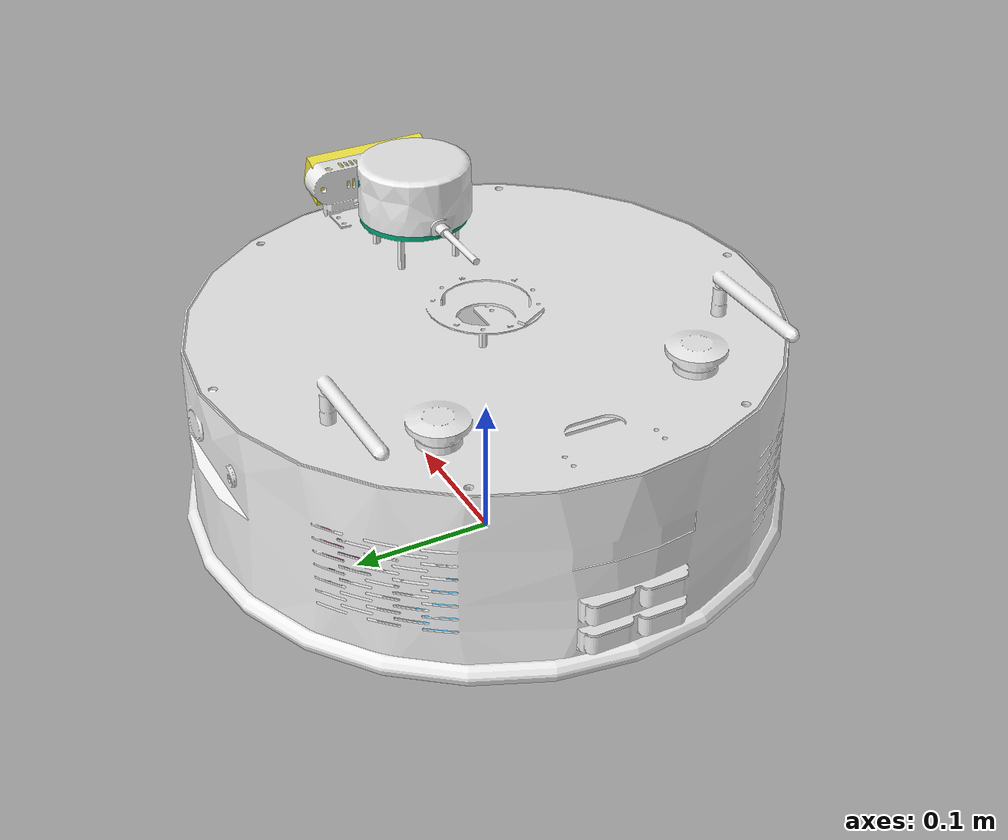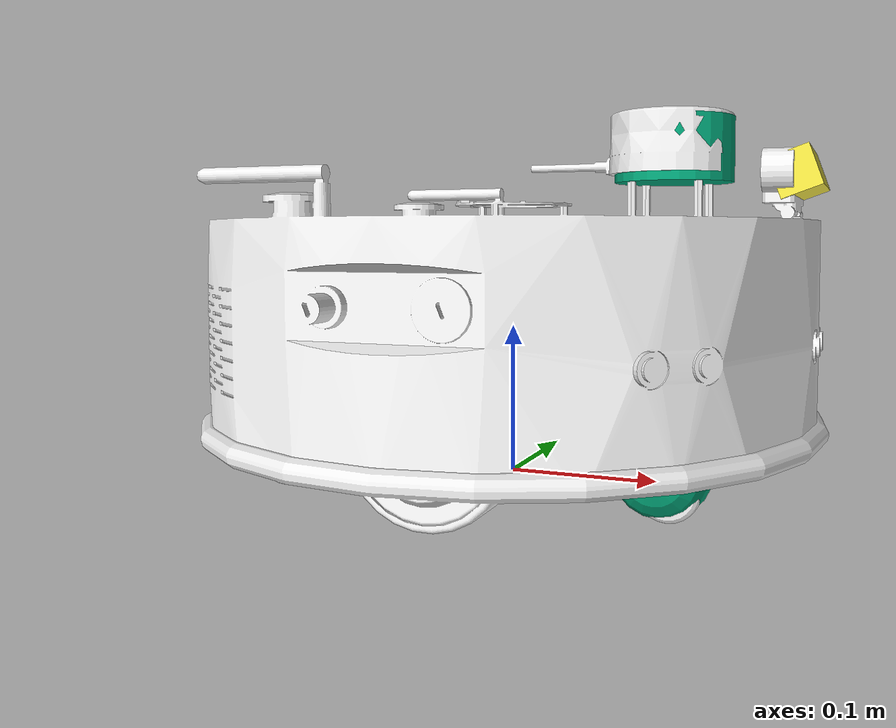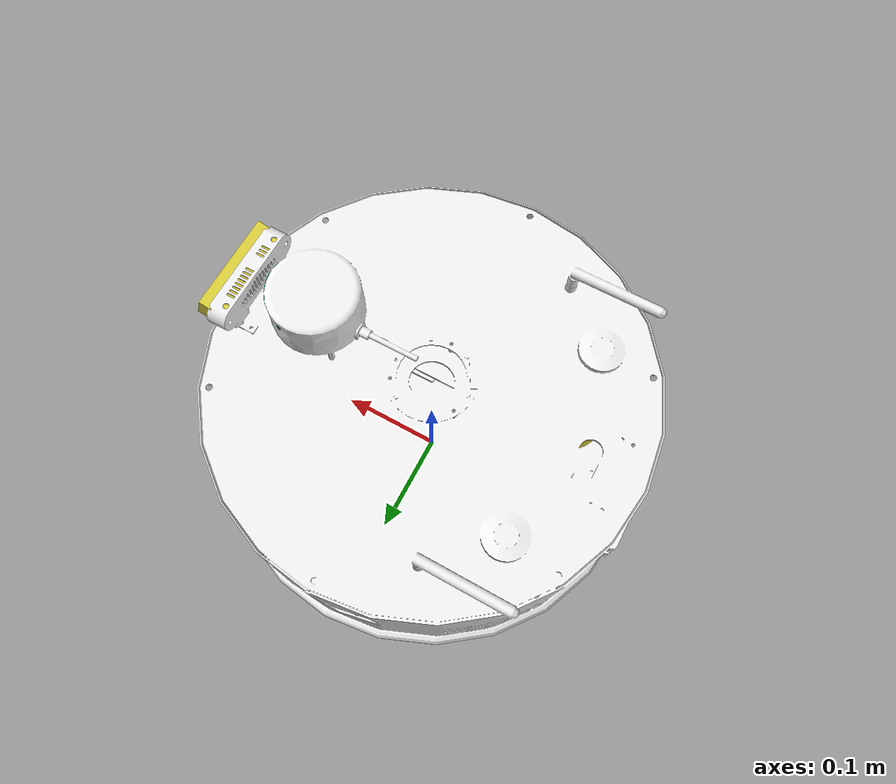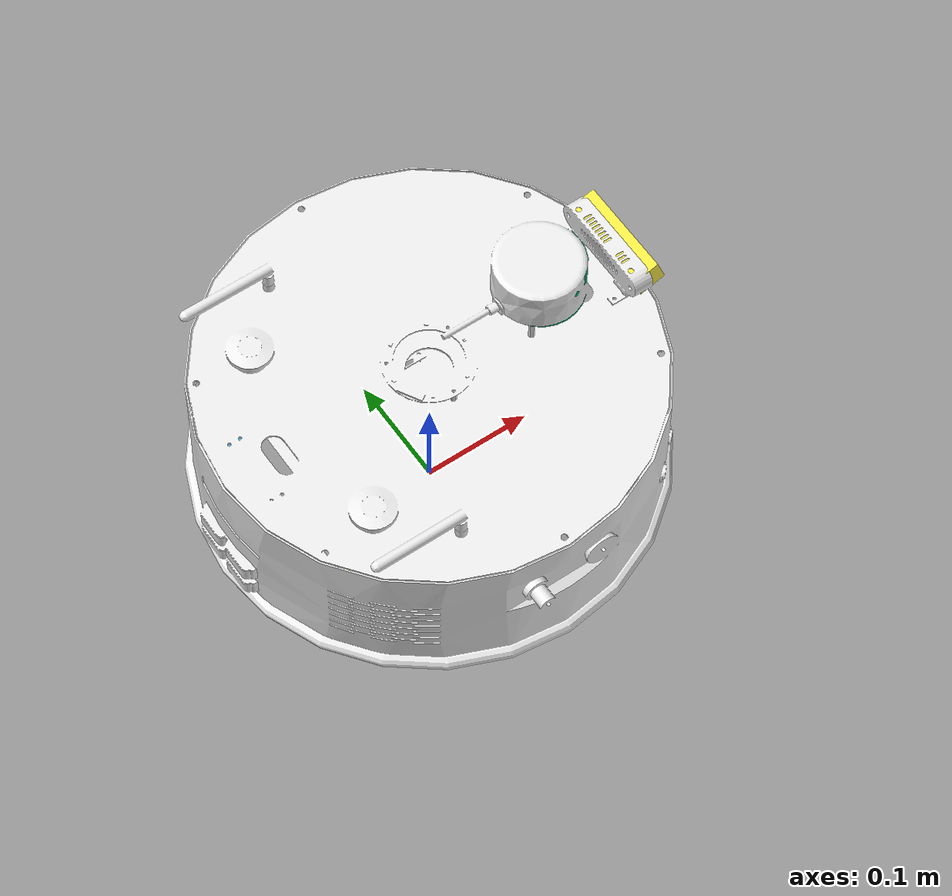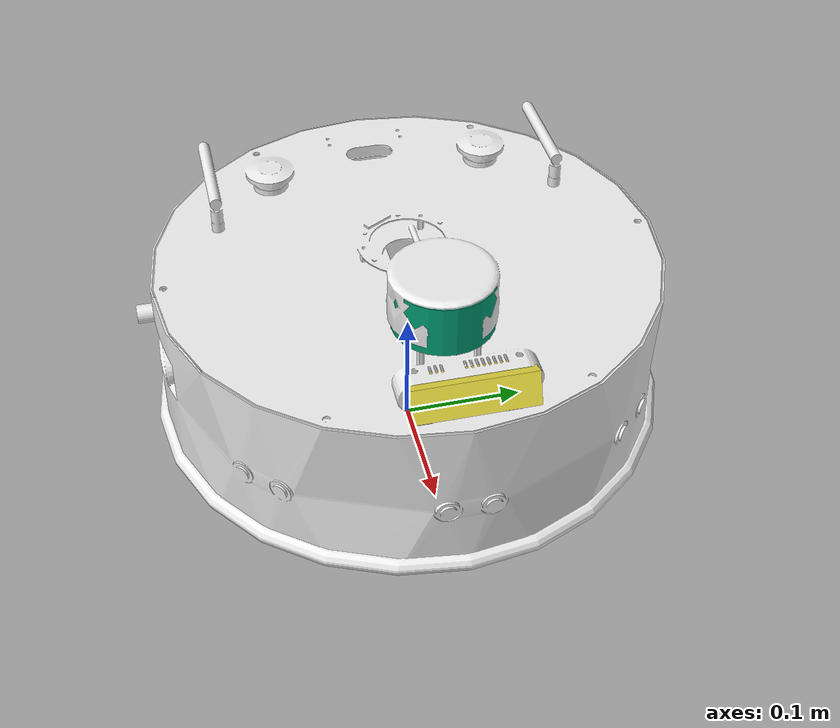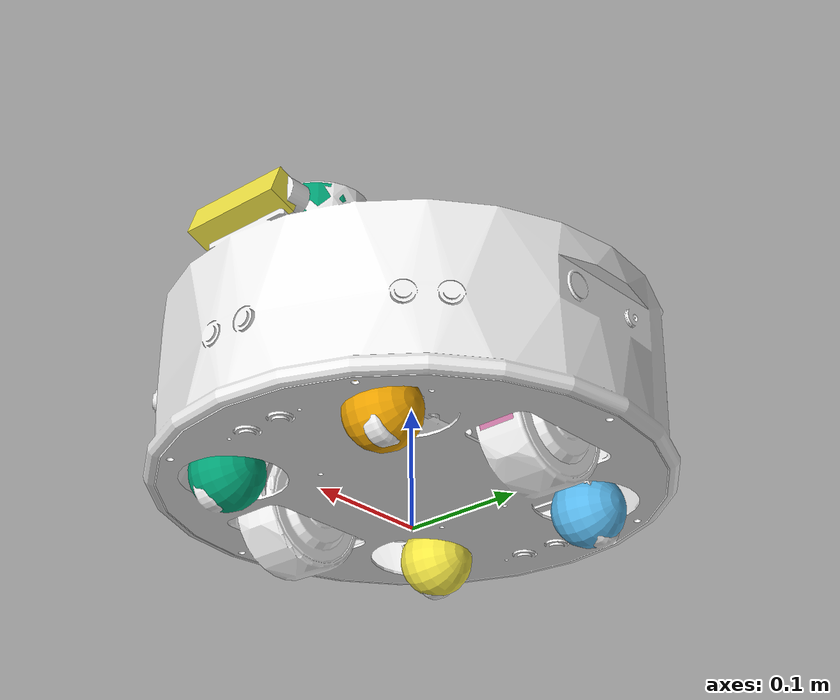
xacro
<?xml version="1.0"?>
<robot xmlns:xacro="http://www.ros.org/wiki/xacro" name="qrb_robot_base_mini">
  <xacro:arg name="mujoco_model" default="description/scene.xml" />
  <xacro:arg name="mujoco_viewer" default="false" />

  <xacro:include filename="$(find qrb_amr_nav_sim)/description/urdf/qrb_robot_base_mini.urdf" />
  <xacro:qrb_robot_base_mini ns=""/>

  <ros2_control name="qrb_robot_base_mini_mujoco" type="system">
    <hardware>
      <plugin>picknik_mujoco_ros/MujocoSystem</plugin>
      <param name="mujoco_model">$(arg mujoco_model)</param>
      <param name="mujoco_model_package">qrb_remote_assistant_sim</param>
      <param name="mujoco_viewer">$(arg mujoco_viewer)</param>
      <param name="mujoco_keyframe">default</param>
      <param name="odom_frame">map</param>
      <param name="publish_mj_world_tf">true</param>
      <param name="base_link_name">base_link</param>
      <!-- The casters are URDF continuous joints about a diagonal axis but MuJoCo ball joints (they roll freely);
           nothing commands them. -->
      <param name="ignore_joint_validation">caster_wheel_joint1 caster_wheel_joint2 caster_wheel_joint3 caster_wheel_joint4</param>
      <param name="tf_publish_rate">60</param>
      <param name="render_publish_rate">2</param>
      <!-- Qualcomm's lidar (config/params/qrb_robot_base_mini_laser_params.yaml) publishes at 15 Hz on /scan. -->
      <param name="lidar_publish_rate">15</param>
    </hardware>
    <!-- The rangefinder lidar (sites laser_scan-0000 .. -1799 on the laser body) publishes on /scan, as Qualcomm's
         Gazebo lidar did, in frame laser_scan_ROS. -->
    <!-- Qualcomm's RGB camera topics (rgb_camera_params.yaml), which the YOLO pipeline and the person check read. -->
    <sensor name="camera">
      <param name="rgb_topic">/camera/color/image_raw</param>
      <param name="camera_info_topic">/camera/color/camera_info</param>
    </sensor>
    <sensor name="laser_scan">
      <param name="topic">/scan</param>
    </sensor>
    <joint name="wheel_left_joint">
      <command_interface name="velocity"/>
      <state_interface name="position"/>
      <state_interface name="velocity"/>
    </joint>
    <joint name="wheel_right_joint">
      <command_interface name="velocity"/>
      <state_interface name="position"/>
      <state_interface name="velocity"/>
    </joint>
  </ros2_control>
</robot>

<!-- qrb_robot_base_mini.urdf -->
<!--
# Copyright (c) 2025 Qualcomm Innovation Center, Inc. All rights reserved.
# SPDX-License-Identifier: BSD-3-Clause-Clear
-->
<robot xmlns:xacro="http://ros.org/wiki/xacro">
  <xacro:macro name="qrb_robot_base_mini" params="ns:=''">
    <xacro:property name="namespace" value="${ns + '/' if ns != '' else ''}" />
    <!-- Inertia matrices -->
    <xacro:include filename="$(find qrb_amr_nav_sim)/description/urdf/inertia_macros.xacro" />
    <!-- Material matrices -->
    <xacro:include filename="$(find qrb_amr_nav_sim)/description/urdf/material_macros.xacro" />

    <xacro:property name="cylinder_radius" value="0.21" />
    <xacro:property name="cylinder_height" value="0.14" />
    <xacro:property name="chassis_height" value="0.031" />
    <xacro:property name="caster_wheel_radius" value="0.03"/>
    <xacro:property name="wheel_radius" value="0.053" scope="parent" />
    <xacro:property name="wheel_thickness" value="0.031" />
    <xacro:property name="wheel_separation" value="0.25" scope="parent" />
    <xacro:property name="laser_radius" value="0.038" />
    <xacro:property name="laser_thickness" value="0.041" />
    <xacro:property name="laser_heigth" value="0.216" />
    <xacro:property name="camera_box_length" value="0.09" />
    <xacro:property name="camera_box_width" value="0.025" />
    <xacro:property name="camera_box_heigth" value="0.025" />

    <xacro:property name="base_link_mass" value="16.5"/>
    <xacro:property name="laser_link_mass" value="0.3"/>
    <xacro:property name="base_camera_link_mass" value="0.1"/>
    <xacro:property name="wheel_link_mass" value="1"/>
    <xacro:property name="caster_wheel_link_mass" value="0.3"/>

    <link name="${namespace}base_footprint"/>

    <link name="${namespace}base_link">
      <visual>
        <origin rpy="0 0 -${pi/2}" xyz="0 0 -${cylinder_height/2}"/>
        <geometry>
          <mesh filename="package://qrb_amr_nav_sim/description/assets/wheelTec_AMR_mini.STL" scale="0.001 0.001 0.001"/>
        </geometry>
        <material name="white"/>
      </visual>
      <inertial name="base_link_inertial">
        <mass value="${base_link_mass}"/>
        <xacro:cylinder_inertia_calculator mass="${base_link_mass}" radius="${cylinder_radius}" length="${cylinder_height}" />
      </inertial>
      <collision name="base_link_collision">
        <origin rpy="0 0 0" xyz="0 0 0"/>
        <geometry>
          <cylinder radius="${cylinder_radius}" length="${cylinder_height}"/>
        </geometry>
      </collision>
    </link>

    <joint name="${namespace}base_link_joint" type="fixed">
      <parent link="${namespace}base_footprint"/>
      <child link="${namespace}base_link"/>
      <origin xyz="0 0 ${chassis_height+cylinder_height/2}"/>
    </joint>

    <link name="${namespace}laser">
      <visual>
        <origin xyz="0 0 0" rpy="0 0 ${pi}"/>
        <geometry>
          <cylinder radius="${laser_radius}" length="${laser_thickness}" />
        </geometry>
        <material name="transparent"/>
      </visual>
      <inertial>
        <mass value="${laser_link_mass}"/>
        <xacro:cylinder_inertia_calculator mass="${laser_link_mass}" radius="${laser_radius}" length="${laser_thickness}"/>
      </inertial>
      <collision>
        <origin xyz="0 0 0" rpy="0 0 ${pi}"/>
        <geometry>
          <cylinder radius="${laser_radius}" length="${laser_thickness}" />
        </geometry>
      </collision>
    </link>
    <joint name="${namespace}laser_joint" type="fixed">
      <parent link="${namespace}base_link"/>
      <child link="${namespace}laser"/>
      <origin xyz="${cylinder_radius/2+0.005} 0 ${laser_heigth-chassis_height-(cylinder_height/2)}" rpy="0 0 0" />
    </joint>

    <link name="${namespace}base_camera_link">
      <visual>
        <origin xyz="0 0 0" rpy="0 0 ${pi/2}"/>
        <geometry>
          <box size="${camera_box_length} ${camera_box_width} ${camera_box_heigth}"/>
        </geometry>
        <material name="transparent"/>
      </visual>
      <inertial>
        <mass value="0.01"/>
        <xacro:box_inertia_calculator mass="${base_camera_link_mass}" length="${camera_box_length}" width="${camera_box_width}" height="${camera_box_heigth}" />
      </inertial>
      <collision name="base_camera_link_collision">
        <origin rpy="0 0 0" xyz="0 0 ${pi/2}"/>
        <geometry>
          <box size="${camera_box_length} ${camera_box_width} ${camera_box_heigth}"/>
        </geometry>
      </collision>
    </link>
    <joint name="${namespace}base_to_camera_joint" type="fixed">
      <origin xyz="${cylinder_radius-camera_box_width/2-0.01} 0 ${cylinder_height/2+camera_box_heigth/2+0.015}" rpy="0 -${pi/9} 0"/>
      <parent link="${namespace}base_link"/>
      <child link="${namespace}base_camera_link"/>
    </joint>

    <link name="${namespace}base_camera_color_frame"/>
    <joint name="${namespace}base_camera_color_frame_joint" type="fixed">
      <parent link="${namespace}base_camera_link"/>
      <child link="${namespace}base_camera_color_frame"/>
      <origin xyz="0 0 0"/>
    </joint>

    <link name="${namespace}base_camera_depth_frame"/>
    <joint name="${namespace}base_camera_depth_frame_joint" type="fixed">
      <parent link="${namespace}base_camera_link"/>
      <child link="${namespace}base_camera_depth_frame"/>
      <origin xyz="0 0 0"/>
    </joint>

    <!-- Wheel_left Link -->
    <link name="${namespace}wheel_left">
      <inertial name="wheel_left_inertial">
        <mass value="${wheel_link_mass}"/>
        <xacro:cylinder_inertia_calculator mass="${wheel_link_mass}" radius="${wheel_radius}" length="${wheel_thickness}"/>
      </inertial>
      <collision name="wheel_left_collision">
        <origin xyz="0 0 0" rpy="${pi/2} 0 0"/>
        <geometry>
          <cylinder radius="${wheel_radius}" length="${wheel_thickness}"/>
        </geometry>
      </collision>
      <visual name="wheel_left_visual">
        <origin xyz="0 0 0" rpy="${pi/2} 0 0"/>
        <geometry>
          <cylinder radius="${wheel_radius}" length="${wheel_thickness}"/>
        </geometry>
      </visual>
    </link>

    <!-- Wheel_right Link -->
    <link name="${namespace}wheel_right">
      <inertial name="wheel_right_inertial">
        <mass value="${wheel_link_mass}"/>
        <xacro:cylinder_inertia_calculator mass="${wheel_link_mass}" radius="${wheel_radius}" length="${wheel_thickness}"/>
      </inertial>
      <collision name="wheel_right_collision">
        <origin xyz="0 0 0" rpy="${pi/2} 0 0"/>
        <geometry>
          <cylinder radius="${wheel_radius}" length="${wheel_thickness}"/>
        </geometry>
      </collision>
      <visual name="wheel_right_visual">
        <origin xyz="0 0 0" rpy="${pi/2} 0 0"/>
        <geometry>
          <cylinder radius="${wheel_radius}" length="${wheel_thickness}"/>
        </geometry>
      </visual>
    </link>

    <!-- Wheel_left Joint Link -->
    <joint name="${namespace}wheel_left_joint" type="continuous">
      <origin xyz="0 ${wheel_separation/2} -${chassis_height+cylinder_height/2-wheel_radius}" rpy="0 0 0"/>
      <child link="${namespace}wheel_left"/>
      <parent link="${namespace}base_link"/>
      <axis xyz="0 1 0"/>
    </joint>

    <!-- Wheel_right Joint Link -->
    <joint name="${namespace}wheel_right_joint" type="continuous">
      <origin xyz="0 -${wheel_separation/2} -${chassis_height+cylinder_height/2-wheel_radius}" rpy="0 0 0"/>
      <child link="${namespace}wheel_right"/>
      <parent link="${namespace}base_link"/>
      <axis xyz="0 1 0" />
    </joint>

    <link name="${namespace}caster_wheel_link1">
      <visual>
        <origin xyz="0 0 0" rpy="${pi/2} 0 0"/>
        <geometry>
          <sphere radius="${caster_wheel_radius}"/>
        </geometry>
        <material name="transparent"/>
      </visual>
      <collision>
        <origin xyz="0 0 0" rpy="${pi/2} 0 0"/>
        <geometry>
          <sphere radius="${caster_wheel_radius}"/>
        </geometry>
      </collision>
      <inertial>
        <mass value="${caster_wheel_link_mass}"/>
        <xacro:sphere_inertia_calculator mass="${caster_wheel_link_mass}" radius="${caster_wheel_radius}" />
      </inertial>
    </link>
    <joint name="${namespace}caster_wheel_joint1" type="continuous">
      <parent link="${namespace}base_link" />
      <child link="${namespace}caster_wheel_link1" />
      <origin xyz="0.12 0.08 -${chassis_height+cylinder_height/2-caster_wheel_radius}" />
      <axis xyz="1 1 1" />
    </joint>

    <link name="${namespace}caster_wheel_link2">
      <visual>
        <origin xyz="0 0 0" rpy="${pi/2} 0 0"/>
        <geometry>
          <sphere radius="${caster_wheel_radius}"/>
        </geometry>
        <material name="transparent"/>
      </visual>
      <collision>
        <origin xyz="0 0 0" rpy="${pi/2} 0 0"/>
        <geometry>
          <sphere radius="${caster_wheel_radius}"/>
        </geometry>
      </collision>
      <inertial>
        <mass value="${caster_wheel_link_mass}"/>
        <xacro:sphere_inertia_calculator mass="${caster_wheel_link_mass}" radius="${caster_wheel_radius}" />
      </inertial>
    </link>
    <joint name="${namespace}caster_wheel_joint2" type="continuous">
      <parent link="${namespace}base_link" />
      <child link="${namespace}caster_wheel_link2" />
      <origin xyz="-0.12 0.08 -${chassis_height+cylinder_height/2-caster_wheel_radius}" />
      <axis xyz="1 1 1" />
    </joint>

    <link name="${namespace}caster_wheel_link3">
      <visual>
        <origin xyz="0 0 0" rpy="${pi/2} 0 0"/>
        <geometry>
          <sphere radius="${caster_wheel_radius}"/>
        </geometry>
        <material name="transparent"/>
      </visual>
      <collision>
        <origin xyz="0 0 0" rpy="${pi/2} 0 0"/>
        <geometry>
          <sphere radius="${caster_wheel_radius}"/>
        </geometry>
      </collision>
      <inertial>
        <mass value="${caster_wheel_link_mass}"/>
        <xacro:sphere_inertia_calculator mass="${caster_wheel_link_mass}" radius="${caster_wheel_radius}" />
      </inertial>
    </link>
    <joint name="${namespace}caster_wheel_joint3" type="continuous">
      <parent link="${namespace}base_link" />
      <child link="${namespace}caster_wheel_link3" />
      <origin xyz="0.12 -0.08  -${chassis_height+cylinder_height/2-caster_wheel_radius}" />
      <axis xyz="1 1 1" />
    </joint>

    <link name="${namespace}caster_wheel_link4">
      <visual>
        <origin xyz="0 0 0" rpy="${pi/2} 0 0"/>
        <geometry>
          <sphere radius="${caster_wheel_radius}"/>
        </geometry>
        <material name="transparent"/>
      </visual>
      <collision>
        <origin xyz="0 0 0" rpy="${pi/2} 0 0"/>
        <geometry>
          <sphere radius="${caster_wheel_radius}"/>
        </geometry>
      </collision>
      <inertial>
        <mass value="${caster_wheel_link_mass}"/>
        <xacro:sphere_inertia_calculator mass="${caster_wheel_link_mass}" radius="${caster_wheel_radius}" />
      </inertial>
    </link>
    <joint name="${namespace}caster_wheel_joint4" type="continuous">
      <parent link="${namespace}base_link" />
      <child link="${namespace}caster_wheel_link4" />
      <origin xyz="-0.12 -0.08  -${chassis_height+cylinder_height/2-caster_wheel_radius}" />
      <axis xyz="1 1 1" />
    </joint>

    <link name="${namespace}base_imu_link">
      <inertial>
        <mass value="0.01"/>
        <inertia ixx="1.0" ixy="0" ixz="0" iyy="1.0" iyz="0" izz="1.0"/>
      </inertial>
    </link>
    <joint name="${namespace}base_to_imu_joint" type="fixed">
      <origin xyz="0.0 0.0 0.0"/>
      <parent link="${namespace}base_link"/>
      <child link="${namespace}base_imu_link"/>
    </joint>

    <!-- Gazebo elements -->
    <gazebo reference="${namespace}caster_wheel_link1">
      <mu1>0</mu1>
      <mu2>0</mu2>
    </gazebo>
    <gazebo reference="${namespace}caster_wheel_link2">
      <mu1>0</mu1>
      <mu2>0</mu2>
    </gazebo>
    <gazebo reference="${namespace}caster_wheel_link3">
      <mu1>0</mu1>
      <mu2>0</mu2>
    </gazebo>
    <gazebo reference="${namespace}caster_wheel_link4">
      <mu1>0</mu1>
      <mu2>0</mu2>
    </gazebo>
  </xacro:macro>
</robot>
